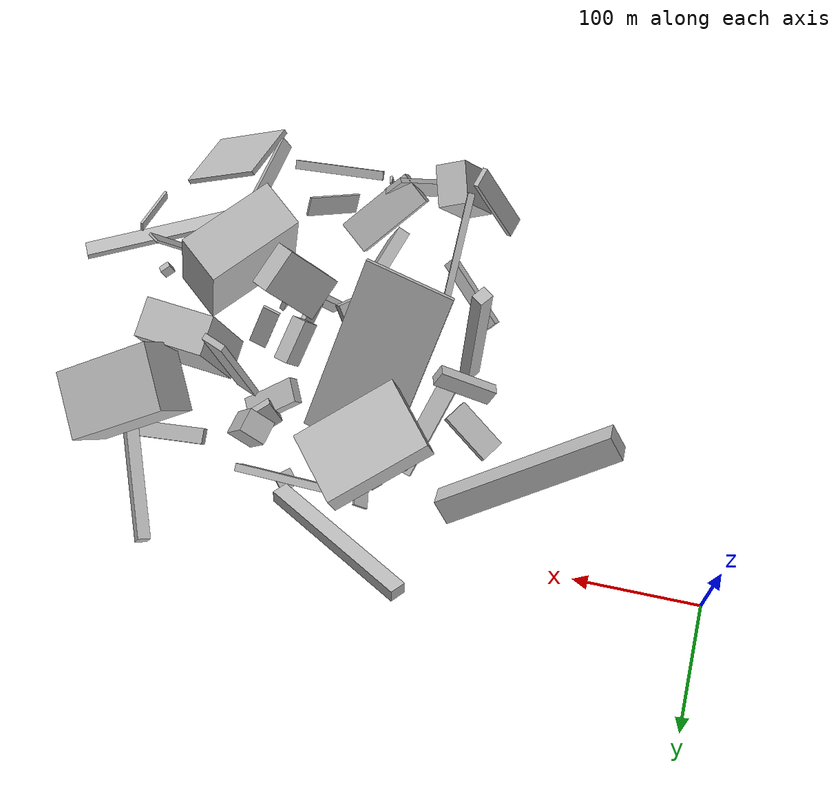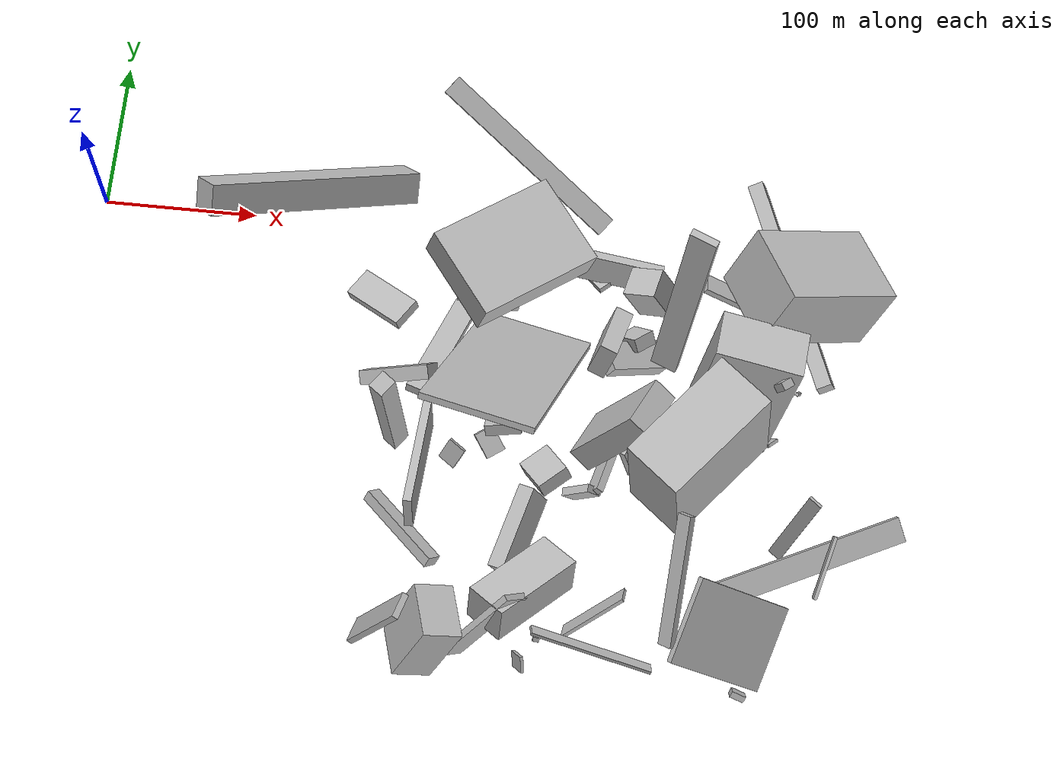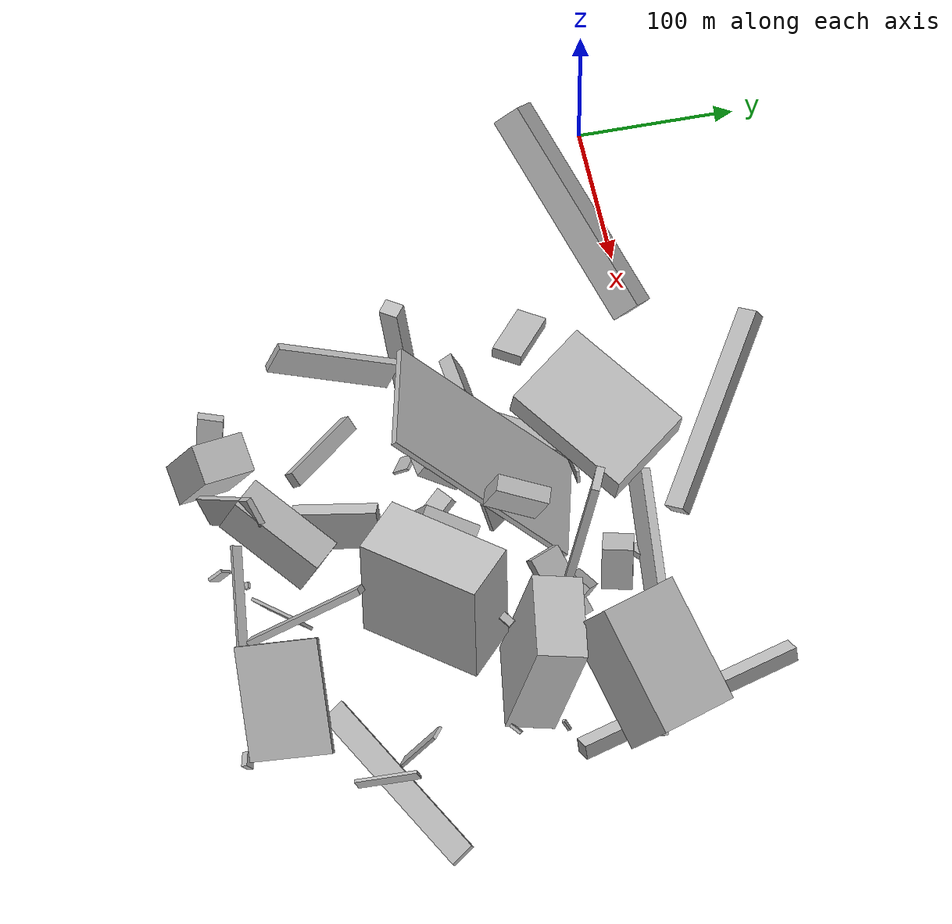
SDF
<sdf version="1.6">
 <world name="default">
  <model name="building_5">
   <static>0</static>
   <pose>398.93339716877426 -172.08604717186736 64.09622754239716 0.053077538592421564 -0.05921299457504138 -0.7085122933176582</pose>
   <link name="link">
    <gravity>0</gravity>
    <pose>0 0 39.0 0 0 0</pose>
    <collision name="collision"><geometry><box><size>39 78 78</size></box></geometry></collision>
    <visual name="visual">
     <cast_shadows>0</cast_shadows>
     <geometry><box><size>39 78 78</size></box></geometry>
     <material>
      <script>
       <uri>model://HANNAS_wall/materials/scripts</uri>
       <uri>model://HANNAS_wall/materials/textures</uri>
       <name>vrc/HANNAS_wall</name>
      </script>
     </material>
    </visual>
   </link>
  </model>
  <model name="building_6">
   <static>0</static>
   <pose>277.89133051898716 -120.46184297197075 64.45076537489118 0.05452620261090895 -0.7977927970173792 -1.8483691170286245</pose>
   <link name="link">
    <gravity>0</gravity>
    <pose>0 0 2.0 0 0 0</pose>
    <collision name="collision"><geometry><box><size>150 72 4</size></box></geometry></collision>
    <visual name="visual">
     <cast_shadows>0</cast_shadows>
     <geometry><box><size>150 72 4</size></box></geometry>
     <material>
      <script>
       <uri>model://HANNAS_wall/materials/scripts</uri>
       <uri>model://HANNAS_wall/materials/textures</uri>
       <name>vrc/HANNAS_wall</name>
      </script>
     </material>
    </visual>
   </link>
  </model>
  <model name="building_7">
   <static>0</static>
   <pose>446.8017825215225 -29.01620865275066 74.84554168238606 1.1951144042633148 -1.0097940043347784 0.7846490316749425</pose>
   <link name="link">
    <gravity>0</gravity>
    <pose>0 0 26.5 0 0 0</pose>
    <collision name="collision"><geometry><box><size>44 81 53</size></box></geometry></collision>
    <visual name="visual">
     <cast_shadows>0</cast_shadows>
     <geometry><box><size>44 81 53</size></box></geometry>
     <material>
      <script>
       <uri>model://HANNAS_wall/materials/scripts</uri>
       <uri>model://HANNAS_wall/materials/textures</uri>
       <name>vrc/HANNAS_wall</name>
      </script>
     </material>
    </visual>
   </link>
  </model>
  <model name="building_16">
   <static>0</static>
   <pose>319.32174859154327 -229.17555205556266 34.30561464346373 1.198908890928895 -0.25580832159423883 -0.6663575494947207</pose>
   <link name="link">
    <gravity>0</gravity>
    <pose>0 0 31.5 0 0 0</pose>
    <collision name="collision"><geometry><box><size>27 24 63</size></box></geometry></collision>
    <visual name="visual">
     <cast_shadows>0</cast_shadows>
     <geometry><box><size>27 24 63</size></box></geometry>
     <material>
      <script>
       <uri>model://HANNAS_wall/materials/scripts</uri>
       <uri>model://HANNAS_wall/materials/textures</uri>
       <name>vrc/HANNAS_wall</name>
      </script>
     </material>
    </visual>
   </link>
  </model>
  <model name="building_17">
   <static>0</static>
   <pose>288.5825087367174 -22.87796729139152 29.732562379120036 1.999127257364877 -1.2344574712953267 1.0833425770302985</pose>
   <link name="link">
    <gravity>0</gravity>
    <pose>0 0 40.5 0 0 0</pose>
    <collision name="collision"><geometry><box><size>22 6 81</size></box></geometry></collision>
    <visual name="visual">
     <cast_shadows>0</cast_shadows>
     <geometry><box><size>22 6 81</size></box></geometry>
     <material>
      <script>
       <uri>model://HANNAS_wall/materials/scripts</uri>
       <uri>model://HANNAS_wall/materials/textures</uri>
       <name>vrc/HANNAS_wall</name>
      </script>
     </material>
    </visual>
   </link>
  </model>
  <model name="building_18">
   <static>0</static>
   <pose>333.53033341735426 -161.84075177534714 67.94300992617995 -0.4588695776004299 -0.31931231626989753 -1.9994311355210548</pose>
   <link name="link">
    <gravity>0</gravity>
    <pose>0 0 31.5 0 0 0</pose>
    <collision name="collision"><geometry><box><size>35 16 63</size></box></geometry></collision>
    <visual name="visual">
     <cast_shadows>0</cast_shadows>
     <geometry><box><size>35 16 63</size></box></geometry>
     <material>
      <script>
       <uri>model://HANNAS_wall/materials/scripts</uri>
       <uri>model://HANNAS_wall/materials/textures</uri>
       <name>vrc/HANNAS_wall</name>
      </script>
     </material>
    </visual>
   </link>
  </model>
  <model name="building_20">
   <static>0</static>
   <pose>361.27698849981493 -163.45771236694168 31.36450086683428 -0.0886284664640928 0.15902502163076193 2.70741251020081</pose>
   <link name="link">
    <gravity>0</gravity>
    <pose>0 0 20.5 0 0 0</pose>
    <collision name="collision"><geometry><box><size>4 11 41</size></box></geometry></collision>
    <visual name="visual">
     <cast_shadows>0</cast_shadows>
     <geometry><box><size>4 11 41</size></box></geometry>
     <material>
      <script>
       <uri>model://HANNAS_wall/materials/scripts</uri>
       <uri>model://HANNAS_wall/materials/textures</uri>
       <name>vrc/HANNAS_wall</name>
      </script>
     </material>
    </visual>
   </link>
  </model>
  <model name="building_24">
   <static>0</static>
   <pose>330.13753266415074 -8.532858728943339 47.47595338647352 0.7351437066381752 -1.0852591759691783 -1.3733707639014436</pose>
   <link name="link">
    <gravity>0</gravity>
    <pose>0 0 66.5 0 0 0</pose>
    <collision name="collision"><geometry><box><size>10 13 133</size></box></geometry></collision>
    <visual name="visual">
     <cast_shadows>0</cast_shadows>
     <geometry><box><size>10 13 133</size></box></geometry>
     <material>
      <script>
       <uri>model://HANNAS_wall/materials/scripts</uri>
       <uri>model://HANNAS_wall/materials/textures</uri>
       <name>vrc/HANNAS_wall</name>
      </script>
     </material>
    </visual>
   </link>
  </model>
  <model name="building_29">
   <static>0</static>
   <pose>211.07696831288553 -125.23237079386973 45.82930065977993 0.7993206545895004 -0.9253238774563639 -2.25636208376925</pose>
   <link name="link">
    <gravity>0</gravity>
    <pose>0 0 4.5 0 0 0</pose>
    <collision name="collision"><geometry><box><size>14 48 9</size></box></geometry></collision>
    <visual name="visual">
     <cast_shadows>0</cast_shadows>
     <geometry><box><size>14 48 9</size></box></geometry>
     <material>
      <script>
       <uri>model://HANNAS_wall/materials/scripts</uri>
       <uri>model://HANNAS_wall/materials/textures</uri>
       <name>vrc/HANNAS_wall</name>
      </script>
     </material>
    </visual>
   </link>
  </model>
  <model name="building_31">
   <static>0</static>
   <pose>425.29663847870665 -95.95535504548681 54.94689572275863 0.5415639457791298 -1.341833681144645 0.8989096563595798</pose>
   <link name="link">
    <gravity>0</gravity>
    <pose>0 0 15.5 0 0 0</pose>
    <collision name="collision"><geometry><box><size>94 54 31</size></box></geometry></collision>
    <visual name="visual">
     <cast_shadows>0</cast_shadows>
     <geometry><box><size>94 54 31</size></box></geometry>
     <material>
      <script>
       <uri>model://HANNAS_wall/materials/scripts</uri>
       <uri>model://HANNAS_wall/materials/textures</uri>
       <name>vrc/HANNAS_wall</name>
      </script>
     </material>
    </visual>
   </link>
  </model>
  <model name="building_44">
   <static>0</static>
   <pose>213.25054710672995 -91.18977194952929 71.39043652763665 -1.8307228632661856 -0.017757153232347573 0.9810431939619569</pose>
   <link name="link">
    <gravity>0</gravity>
    <pose>0 0 21.0 0 0 0</pose>
    <collision name="collision"><geometry><box><size>19 7 42</size></box></geometry></collision>
    <visual name="visual">
     <cast_shadows>0</cast_shadows>
     <geometry><box><size>19 7 42</size></box></geometry>
     <material>
      <script>
       <uri>model://HANNAS_wall/materials/scripts</uri>
       <uri>model://HANNAS_wall/materials/textures</uri>
       <name>vrc/HANNAS_wall</name>
      </script>
     </material>
    </visual>
   </link>
  </model>
  <model name="building_45">
   <static>0</static>
   <pose>342.5688803798966 -94.63408500859082 96.39320158031114 1.2133950294862976 0.17933079309381014 -0.3144139770064585</pose>
   <link name="link">
    <gravity>0</gravity>
    <pose>0 0 17.0 0 0 0</pose>
    <collision name="collision"><geometry><box><size>11 25 34</size></box></geometry></collision>
    <visual name="visual">
     <cast_shadows>0</cast_shadows>
     <geometry><box><size>11 25 34</size></box></geometry>
     <material>
      <script>
       <uri>model://HANNAS_wall/materials/scripts</uri>
       <uri>model://HANNAS_wall/materials/textures</uri>
       <name>vrc/HANNAS_wall</name>
      </script>
     </material>
    </visual>
   </link>
  </model>
  <model name="building_47">
   <static>0</static>
   <pose>242.08736020114588 -231.47388122181928 18.5705238201404 1.8186696989000284 0.7934641205331967 -2.1810963785697024</pose>
   <link name="link">
    <gravity>0</gravity>
    <pose>0 0 31.0 0 0 0</pose>
    <collision name="collision"><geometry><box><size>7 10 62</size></box></geometry></collision>
    <visual name="visual">
     <cast_shadows>0</cast_shadows>
     <geometry><box><size>7 10 62</size></box></geometry>
     <material>
      <script>
       <uri>model://HANNAS_wall/materials/scripts</uri>
       <uri>model://HANNAS_wall/materials/textures</uri>
       <name>vrc/HANNAS_wall</name>
      </script>
     </material>
    </visual>
   </link>
  </model>
  <model name="building_51">
   <static>0</static>
   <pose>212.75103212722263 -149.86429438285782 69.26694926241689 1.6644634336752917 0.0564111201374724 -0.6366898147852937</pose>
   <link name="link">
    <gravity>0</gravity>
    <pose>0 0 6.0 0 0 0</pose>
    <collision name="collision"><geometry><box><size>10 131 12</size></box></geometry></collision>
    <visual name="visual">
     <cast_shadows>0</cast_shadows>
     <geometry><box><size>10 131 12</size></box></geometry>
     <material>
      <script>
       <uri>model://HANNAS_wall/materials/scripts</uri>
       <uri>model://HANNAS_wall/materials/textures</uri>
       <name>vrc/HANNAS_wall</name>
      </script>
     </material>
    </visual>
   </link>
  </model>
  <model name="building_53">
   <static>0</static>
   <pose>206.85785103577174 -11.070453846829343 90.36278645243243 -0.9409472923766149 0.6418157774248305 2.413458784015558</pose>
   <link name="link">
    <gravity>0</gravity>
    <pose>0 0 71.0 0 0 0</pose>
    <collision name="collision"><geometry><box><size>20 19 142</size></box></geometry></collision>
    <visual name="visual">
     <cast_shadows>0</cast_shadows>
     <geometry><box><size>20 19 142</size></box></geometry>
     <material>
      <script>
       <uri>model://HANNAS_wall/materials/scripts</uri>
       <uri>model://HANNAS_wall/materials/textures</uri>
       <name>vrc/HANNAS_wall</name>
      </script>
     </material>
    </visual>
   </link>
  </model>
  <model name="building_63">
   <static>0</static>
   <pose>453.73490536792485 -27.263702049841044 19.407430162297445 0.3422846071769745 -0.053739199249222505 -1.230569500940477</pose>
   <link name="link">
    <gravity>0</gravity>
    <pose>0 0 5.0 0 0 0</pose>
    <collision name="collision"><geometry><box><size>150 10 10</size></box></geometry></collision>
    <visual name="visual">
     <cast_shadows>0</cast_shadows>
     <geometry><box><size>150 10 10</size></box></geometry>
     <material>
      <script>
       <uri>model://HANNAS_wall/materials/scripts</uri>
       <uri>model://HANNAS_wall/materials/textures</uri>
       <name>vrc/HANNAS_wall</name>
      </script>
     </material>
    </visual>
   </link>
  </model>
  <model name="building_66">
   <static>0</static>
   <pose>424.6875087127726 -270.5419792257908 54.790916855699294 2.7184363878509337 -0.6679968742944132 3.1196332850886654</pose>
   <link name="link">
    <gravity>0</gravity>
    <pose>0 0 2.0 0 0 0</pose>
    <collision name="collision"><geometry><box><size>70 53 4</size></box></geometry></collision>
    <visual name="visual">
     <cast_shadows>0</cast_shadows>
     <geometry><box><size>70 53 4</size></box></geometry>
     <material>
      <script>
       <uri>model://HANNAS_wall/materials/scripts</uri>
       <uri>model://HANNAS_wall/materials/textures</uri>
       <name>vrc/HANNAS_wall</name>
      </script>
     </material>
    </visual>
   </link>
  </model>
  <model name="building_69">
   <static>0</static>
   <pose>381.769206946022 -78.69978151049636 102.30986122253354 1.4184671310479926 0.021604764668450144 -0.39764089660711266</pose>
   <link name="link">
    <gravity>0</gravity>
    <pose>0 0 2.5 0 0 0</pose>
    <collision name="collision"><geometry><box><size>17 150 5</size></box></geometry></collision>
    <visual name="visual">
     <cast_shadows>0</cast_shadows>
     <geometry><box><size>17 150 5</size></box></geometry>
     <material>
      <script>
       <uri>model://HANNAS_wall/materials/scripts</uri>
       <uri>model://HANNAS_wall/materials/textures</uri>
       <name>vrc/HANNAS_wall</name>
      </script>
     </material>
    </visual>
   </link>
  </model>
  <model name="building_71">
   <static>0</static>
   <pose>430.3617902914512 -43.596646243928795 26.59536363244081 2.582709025484036 -0.23120286905880444 -1.5397441066318263</pose>
   <link name="link">
    <gravity>0</gravity>
    <pose>0 0 2.0 0 0 0</pose>
    <collision name="collision"><geometry><box><size>12 77 4</size></box></geometry></collision>
    <visual name="visual">
     <cast_shadows>0</cast_shadows>
     <geometry><box><size>12 77 4</size></box></geometry>
     <material>
      <script>
       <uri>model://HANNAS_wall/materials/scripts</uri>
       <uri>model://HANNAS_wall/materials/textures</uri>
       <name>vrc/HANNAS_wall</name>
      </script>
     </material>
    </visual>
   </link>
  </model>
  <model name="building_74">
   <static>0</static>
   <pose>216.35362475955546 -278.1484164247691 43.41698530253619 -0.230526473746525 -1.1800280516222121 -0.08691773900555856</pose>
   <link name="link">
    <gravity>0</gravity>
    <pose>0 0 2.0 0 0 0</pose>
    <collision name="collision"><geometry><box><size>83 16 4</size></box></geometry></collision>
    <visual name="visual">
     <cast_shadows>0</cast_shadows>
     <geometry><box><size>83 16 4</size></box></geometry>
     <material>
      <script>
       <uri>model://HANNAS_wall/materials/scripts</uri>
       <uri>model://HANNAS_wall/materials/textures</uri>
       <name>vrc/HANNAS_wall</name>
      </script>
     </material>
    </visual>
   </link>
  </model>
  <model name="building_81">
   <static>0</static>
   <pose>299.7773929217013 -158.85287289773865 18.843176851873803 1.057231121624545 -0.11148352754299828 0.6981386286514321</pose>
   <link name="link">
    <gravity>0</gravity>
    <pose>0 0 13.0 0 0 0</pose>
    <collision name="collision"><geometry><box><size>21 10 26</size></box></geometry></collision>
    <visual name="visual">
     <cast_shadows>0</cast_shadows>
     <geometry><box><size>21 10 26</size></box></geometry>
     <material>
      <script>
       <uri>model://HANNAS_wall/materials/scripts</uri>
       <uri>model://HANNAS_wall/materials/textures</uri>
       <name>vrc/HANNAS_wall</name>
      </script>
     </material>
    </visual>
   </link>
  </model>
  <model name="building_83">
   <static>0</static>
   <pose>345.881093374061 -156.26535773109475 16.348076535123614 -0.34908434225188595 -0.9855911341040177 0.04418123912363032</pose>
   <link name="link">
    <gravity>0</gravity>
    <pose>0 0 2.5 0 0 0</pose>
    <collision name="collision"><geometry><box><size>11 48 5</size></box></geometry></collision>
    <visual name="visual">
     <cast_shadows>0</cast_shadows>
     <geometry><box><size>11 48 5</size></box></geometry>
     <material>
      <script>
       <uri>model://HANNAS_wall/materials/scripts</uri>
       <uri>model://HANNAS_wall/materials/textures</uri>
       <name>vrc/HANNAS_wall</name>
      </script>
     </material>
    </visual>
   </link>
  </model>
  <model name="building_85">
   <static>0</static>
   <pose>353.11728452761577 -50.1630886402509 45.99892068852472 -0.012615640891261243 -1.0906016608107083 2.910791837761511</pose>
   <link name="link">
    <gravity>0</gravity>
    <pose>0 0 11.0 0 0 0</pose>
    <collision name="collision"><geometry><box><size>27 19 22</size></box></geometry></collision>
    <visual name="visual">
     <cast_shadows>0</cast_shadows>
     <geometry><box><size>27 19 22</size></box></geometry>
     <material>
      <script>
       <uri>model://HANNAS_wall/materials/scripts</uri>
       <uri>model://HANNAS_wall/materials/textures</uri>
       <name>vrc/HANNAS_wall</name>
      </script>
     </material>
    </visual>
   </link>
  </model>
  <model name="building_87">
   <static>0</static>
   <pose>412.17310957400673 -238.2055836906215 15.408466206727429 -1.5731286308731738 0.4781739315002865 -1.1203410635710378</pose>
   <link name="link">
    <gravity>0</gravity>
    <pose>0 0 65.0 0 0 0</pose>
    <collision name="collision"><geometry><box><size>16 4 130</size></box></geometry></collision>
    <visual name="visual">
     <cast_shadows>0</cast_shadows>
     <geometry><box><size>16 4 130</size></box></geometry>
     <material>
      <script>
       <uri>model://HANNAS_wall/materials/scripts</uri>
       <uri>model://HANNAS_wall/materials/textures</uri>
       <name>vrc/HANNAS_wall</name>
      </script>
     </material>
    </visual>
   </link>
  </model>
  <model name="building_94">
   <static>0</static>
   <pose>237.82640401969547 -266.19479400108986 42.60944343810602 1.1647986920691578 -1.0838434576112543 0.6367862863590698</pose>
   <link name="link">
    <gravity>0</gravity>
    <pose>0 0 17.0 0 0 0</pose>
    <collision name="collision"><geometry><box><size>50 25 34</size></box></geometry></collision>
    <visual name="visual">
     <cast_shadows>0</cast_shadows>
     <geometry><box><size>50 25 34</size></box></geometry>
     <material>
      <script>
       <uri>model://HANNAS_wall/materials/scripts</uri>
       <uri>model://HANNAS_wall/materials/textures</uri>
       <name>vrc/HANNAS_wall</name>
      </script>
     </material>
    </visual>
   </link>
  </model>
  <model name="building_96">
   <static>0</static>
   <pose>291.9765140608899 -71.24919657547458 78.28093412419483 1.0942737926459882 1.3171638614572745 -2.945131957256762</pose>
   <link name="link">
    <gravity>0</gravity>
    <pose>0 0 30.0 0 0 0</pose>
    <collision name="collision"><geometry><box><size>22 85 60</size></box></geometry></collision>
    <visual name="visual">
     <cast_shadows>0</cast_shadows>
     <geometry><box><size>22 85 60</size></box></geometry>
     <material>
      <script>
       <uri>model://HANNAS_wall/materials/scripts</uri>
       <uri>model://HANNAS_wall/materials/textures</uri>
       <name>vrc/HANNAS_wall</name>
      </script>
     </material>
    </visual>
   </link>
  </model>
  <model name="building_103">
   <static>0</static>
   <pose>278.8808550957918 -277.7385865037873 48.05843631174262 1.6282387439402446 -0.8151918862577574 -2.6157453657638943</pose>
   <link name="link">
    <gravity>0</gravity>
    <pose>0 0 2.0 0 0 0</pose>
    <collision name="collision"><geometry><box><size>19 62 4</size></box></geometry></collision>
    <visual name="visual">
     <cast_shadows>0</cast_shadows>
     <geometry><box><size>19 62 4</size></box></geometry>
     <material>
      <script>
       <uri>model://HANNAS_wall/materials/scripts</uri>
       <uri>model://HANNAS_wall/materials/textures</uri>
       <name>vrc/HANNAS_wall</name>
      </script>
     </material>
    </visual>
   </link>
  </model>
  <model name="building_117">
   <static>0</static>
   <pose>390.2570481284121 -248.86937134308366 85.6803238083117 -0.7602898269202253 -0.5635606593788473 1.5063008667648352</pose>
   <link name="link">
    <gravity>0</gravity>
    <pose>0 0 2.0 0 0 0</pose>
    <collision name="collision"><geometry><box><size>80 10 4</size></box></geometry></collision>
    <visual name="visual">
     <cast_shadows>0</cast_shadows>
     <geometry><box><size>80 10 4</size></box></geometry>
     <material>
      <script>
       <uri>model://HANNAS_wall/materials/scripts</uri>
       <uri>model://HANNAS_wall/materials/textures</uri>
       <name>vrc/HANNAS_wall</name>
      </script>
     </material>
    </visual>
   </link>
  </model>
  <model name="building_118">
   <static>0</static>
   <pose>233.30263273342814 -91.688425072378 18.720220214311812 0.3270587146274248 -0.003866870962802843 2.8208815242364316</pose>
   <link name="link">
    <gravity>0</gravity>
    <pose>0 0 3.0 0 0 0</pose>
    <collision name="collision"><geometry><box><size>15 80 6</size></box></geometry></collision>
    <visual name="visual">
     <cast_shadows>0</cast_shadows>
     <geometry><box><size>15 80 6</size></box></geometry>
     <material>
      <script>
       <uri>model://HANNAS_wall/materials/scripts</uri>
       <uri>model://HANNAS_wall/materials/textures</uri>
       <name>vrc/HANNAS_wall</name>
      </script>
     </material>
    </visual>
   </link>
  </model>
  <model name="building_127">
   <static>0</static>
   <pose>308.10255857893844 -272.3179676955249 13.003840421148984 1.819336560177917 0.7632285714518219 1.7041477846618323</pose>
   <link name="link">
    <gravity>0</gravity>
    <pose>0 0 2.0 0 0 0</pose>
    <collision name="collision"><geometry><box><size>2 3 4</size></box></geometry></collision>
    <visual name="visual">
     <cast_shadows>0</cast_shadows>
     <geometry><box><size>2 3 4</size></box></geometry>
     <material>
      <script>
       <uri>model://HANNAS_wall/materials/scripts</uri>
       <uri>model://HANNAS_wall/materials/textures</uri>
       <name>vrc/HANNAS_wall</name>
      </script>
     </material>
    </visual>
   </link>
  </model>
  <model name="building_130">
   <static>0</static>
   <pose>292.52127794680825 -39.69268065906196 28.76807319618768 1.0995985578395517 0.5140523598104639 -1.8290010620625874</pose>
   <link name="link">
    <gravity>0</gravity>
    <pose>0 0 19.5 0 0 0</pose>
    <collision name="collision"><geometry><box><size>2 4 39</size></box></geometry></collision>
    <visual name="visual">
     <cast_shadows>0</cast_shadows>
     <geometry><box><size>2 4 39</size></box></geometry>
     <material>
      <script>
       <uri>model://HANNAS_wall/materials/scripts</uri>
       <uri>model://HANNAS_wall/materials/textures</uri>
       <name>vrc/HANNAS_wall</name>
      </script>
     </material>
    </visual>
   </link>
  </model>
  <model name="building_131">
   <static>0</static>
   <pose>288.6210239560692 -211.30409306012652 34.338914963476455 1.2854848257094322 -0.1574426486896658 1.2885439471627314</pose>
   <link name="link">
    <gravity>0</gravity>
    <pose>0 0 5.0 0 0 0</pose>
    <collision name="collision"><geometry><box><size>53 27 10</size></box></geometry></collision>
    <visual name="visual">
     <cast_shadows>0</cast_shadows>
     <geometry><box><size>53 27 10</size></box></geometry>
     <material>
      <script>
       <uri>model://HANNAS_wall/materials/scripts</uri>
       <uri>model://HANNAS_wall/materials/textures</uri>
       <name>vrc/HANNAS_wall</name>
      </script>
     </material>
    </visual>
   </link>
  </model>
  <model name="building_132">
   <static>0</static>
   <pose>273.4701232428839 -36.072053887656125 10.97615095393935 -1.466966175084831 -0.6755909997459438 0.07695449817707331</pose>
   <link name="link">
    <gravity>0</gravity>
    <pose>0 0 8.5 0 0 0</pose>
    <collision name="collision"><geometry><box><size>13 2 17</size></box></geometry></collision>
    <visual name="visual">
     <cast_shadows>0</cast_shadows>
     <geometry><box><size>13 2 17</size></box></geometry>
     <material>
      <script>
       <uri>model://HANNAS_wall/materials/scripts</uri>
       <uri>model://HANNAS_wall/materials/textures</uri>
       <name>vrc/HANNAS_wall</name>
      </script>
     </material>
    </visual>
   </link>
  </model>
  <model name="building_137">
   <static>0</static>
   <pose>380.4335213487251 -287.06106635700826 22.404067141121956 -1.1063601714961258 0.5731786432905286 1.7124235110476391</pose>
   <link name="link">
    <gravity>0</gravity>
    <pose>0 0 40.0 0 0 0</pose>
    <collision name="collision"><geometry><box><size>7 2 80</size></box></geometry></collision>
    <visual name="visual">
     <cast_shadows>0</cast_shadows>
     <geometry><box><size>7 2 80</size></box></geometry>
     <material>
      <script>
       <uri>model://HANNAS_wall/materials/scripts</uri>
       <uri>model://HANNAS_wall/materials/textures</uri>
       <name>vrc/HANNAS_wall</name>
      </script>
     </material>
    </visual>
   </link>
  </model>
  <model name="building_139">
   <static>0</static>
   <pose>480.6636469605532 -219.17468076940463 40.24567533086979 2.7889607687832783 -0.11224451863660764 2.927083882861287</pose>
   <link name="link">
    <gravity>0</gravity>
    <pose>0 0 4.0 0 0 0</pose>
    <collision name="collision"><geometry><box><size>2 40 8</size></box></geometry></collision>
    <visual name="visual">
     <cast_shadows>0</cast_shadows>
     <geometry><box><size>2 40 8</size></box></geometry>
     <material>
      <script>
       <uri>model://HANNAS_wall/materials/scripts</uri>
       <uri>model://HANNAS_wall/materials/textures</uri>
       <name>vrc/HANNAS_wall</name>
      </script>
     </material>
    </visual>
   </link>
  </model>
  <model name="building_142">
   <static>0</static>
   <pose>358.46646447502377 -95.54487240708963 22.31272391759819 1.564124974547798 -0.6345693217902145 -2.7108315550219855</pose>
   <link name="link">
    <gravity>0</gravity>
    <pose>0 0 10.0 0 0 0</pose>
    <collision name="collision"><geometry><box><size>46 9 20</size></box></geometry></collision>
    <visual name="visual">
     <cast_shadows>0</cast_shadows>
     <geometry><box><size>46 9 20</size></box></geometry>
     <material>
      <script>
       <uri>model://HANNAS_wall/materials/scripts</uri>
       <uri>model://HANNAS_wall/materials/textures</uri>
       <name>vrc/HANNAS_wall</name>
      </script>
     </material>
    </visual>
   </link>
  </model>
  <model name="building_144">
   <static>0</static>
   <pose>266.29944410715314 -27.94495326874235 57.40758512810751 2.6852832066774606 1.420002178506908 0.3141649193076575</pose>
   <link name="link">
    <gravity>0</gravity>
    <pose>0 0 4.5 0 0 0</pose>
    <collision name="collision"><geometry><box><size>9 14 9</size></box></geometry></collision>
    <visual name="visual">
     <cast_shadows>0</cast_shadows>
     <geometry><box><size>9 14 9</size></box></geometry>
     <material>
      <script>
       <uri>model://HANNAS_wall/materials/scripts</uri>
       <uri>model://HANNAS_wall/materials/textures</uri>
       <name>vrc/HANNAS_wall</name>
      </script>
     </material>
    </visual>
   </link>
  </model>
  <model name="building_145">
   <static>0</static>
   <pose>373.76941916841065 -141.85198720691625 29.027770643890115 -2.670161785132117 -1.2107980116077968 -2.254730556325783</pose>
   <link name="link">
    <gravity>0</gravity>
    <pose>0 0 1.0 0 0 0</pose>
    <collision name="collision"><geometry><box><size>48 14 2</size></box></geometry></collision>
    <visual name="visual">
     <cast_shadows>0</cast_shadows>
     <geometry><box><size>48 14 2</size></box></geometry>
     <material>
      <script>
       <uri>model://HANNAS_wall/materials/scripts</uri>
       <uri>model://HANNAS_wall/materials/textures</uri>
       <name>vrc/HANNAS_wall</name>
      </script>
     </material>
    </visual>
   </link>
  </model>
  <model name="building_156">
   <static>0</static>
   <pose>325.7015556989244 -177.87631841210475 22.347667452457717 2.469586719311925 -0.08529168228660557 1.632691162363394</pose>
   <link name="link">
    <gravity>0</gravity>
    <pose>0 0 6.5 0 0 0</pose>
    <collision name="collision"><geometry><box><size>5 20 13</size></box></geometry></collision>
    <visual name="visual">
     <cast_shadows>0</cast_shadows>
     <geometry><box><size>5 20 13</size></box></geometry>
     <material>
      <script>
       <uri>model://HANNAS_wall/materials/scripts</uri>
       <uri>model://HANNAS_wall/materials/textures</uri>
       <name>vrc/HANNAS_wall</name>
      </script>
     </material>
    </visual>
   </link>
  </model>
  <model name="building_169">
   <static>0</static>
   <pose>336.94545241769356 -24.077655110963832 11.764728198026196 -1.65924892192208 -1.2832054439379368 2.369414041239096</pose>
   <link name="link">
    <gravity>0</gravity>
    <pose>0 0 7.0 0 0 0</pose>
    <collision name="collision"><geometry><box><size>4 14 14</size></box></geometry></collision>
    <visual name="visual">
     <cast_shadows>0</cast_shadows>
     <geometry><box><size>4 14 14</size></box></geometry>
     <material>
      <script>
       <uri>model://HANNAS_wall/materials/scripts</uri>
       <uri>model://HANNAS_wall/materials/textures</uri>
       <name>vrc/HANNAS_wall</name>
      </script>
     </material>
    </visual>
   </link>
  </model>
  <model name="building_173">
   <static>0</static>
   <pose>361.63125806185997 -69.40602838828715 21.646948208514118 1.1847137065262026 -0.7769734857087868 -0.5901064314553279</pose>
   <link name="link">
    <gravity>0</gravity>
    <pose>0 0 7.5 0 0 0</pose>
    <collision name="collision"><geometry><box><size>19 9 15</size></box></geometry></collision>
    <visual name="visual">
     <cast_shadows>0</cast_shadows>
     <geometry><box><size>19 9 15</size></box></geometry>
     <material>
      <script>
       <uri>model://HANNAS_wall/materials/scripts</uri>
       <uri>model://HANNAS_wall/materials/textures</uri>
       <name>vrc/HANNAS_wall</name>
      </script>
     </material>
    </visual>
   </link>
  </model>
  <model name="building_175">
   <static>0</static>
   <pose>460.9954814677268 -195.00511288318668 35.522424769334506 -3.0070711966140276 -1.1349634781546123 0.7912162486455988</pose>
   <link name="link">
    <gravity>0</gravity>
    <pose>0 0 1.0 0 0 0</pose>
    <collision name="collision"><geometry><box><size>60 9 2</size></box></geometry></collision>
    <visual name="visual">
     <cast_shadows>0</cast_shadows>
     <geometry><box><size>60 9 2</size></box></geometry>
     <material>
      <script>
       <uri>model://HANNAS_wall/materials/scripts</uri>
       <uri>model://HANNAS_wall/materials/textures</uri>
       <name>vrc/HANNAS_wall</name>
      </script>
     </material>
    </visual>
   </link>
  </model>
  <model name="building_176">
   <static>0</static>
   <pose>299.62315057750885 -283.74656356386913 16.847777027551427 2.7005724456227327 -0.8880951718152631 -0.863635517961145</pose>
   <link name="link">
    <gravity>0</gravity>
    <pose>0 0 5.0 0 0 0</pose>
    <collision name="collision"><geometry><box><size>14 2 10</size></box></geometry></collision>
    <visual name="visual">
     <cast_shadows>0</cast_shadows>
     <geometry><box><size>14 2 10</size></box></geometry>
     <material>
      <script>
       <uri>model://HANNAS_wall/materials/scripts</uri>
       <uri>model://HANNAS_wall/materials/textures</uri>
       <name>vrc/HANNAS_wall</name>
      </script>
     </material>
    </visual>
   </link>
  </model>
  <model name="building_180">
   <static>0</static>
   <pose>247.94278256157293 -161.29612038123634 23.63896486420563 0.10386748912269486 -0.8334770045743957 0.8781767978589577</pose>
   <link name="link">
    <gravity>0</gravity>
    <pose>0 0 1.0 0 0 0</pose>
    <collision name="collision"><geometry><box><size>15 12 2</size></box></geometry></collision>
    <visual name="visual">
     <cast_shadows>0</cast_shadows>
     <geometry><box><size>15 12 2</size></box></geometry>
     <material>
      <script>
       <uri>model://HANNAS_wall/materials/scripts</uri>
       <uri>model://HANNAS_wall/materials/textures</uri>
       <name>vrc/HANNAS_wall</name>
      </script>
     </material>
    </visual>
   </link>
  </model>
  <model name="building_183">
   <static>0</static>
   <pose>234.34820607429026 -207.29106926537355 110.53718189173539 0.4167802451260852 0.07429559360988605 3.134037962273862</pose>
   <link name="link">
    <gravity>0</gravity>
    <pose>0 0 10.5 0 0 0</pose>
    <collision name="collision"><geometry><box><size>5 80 21</size></box></geometry></collision>
    <visual name="visual">
     <cast_shadows>0</cast_shadows>
     <geometry><box><size>5 80 21</size></box></geometry>
     <material>
      <script>
       <uri>model://HANNAS_wall/materials/scripts</uri>
       <uri>model://HANNAS_wall/materials/textures</uri>
       <name>vrc/HANNAS_wall</name>
      </script>
     </material>
    </visual>
   </link>
  </model>
  <model name="building_187">
   <static>0</static>
   <pose>294.8759033045926 -113.59575414065961 27.0981195372311 -3.1315516292260086 1.2329124672020448 0.7179303163396396</pose>
   <link name="link">
    <gravity>0</gravity>
    <pose>0 0 1.5 0 0 0</pose>
    <collision name="collision"><geometry><box><size>22 16 3</size></box></geometry></collision>
    <visual name="visual">
     <cast_shadows>0</cast_shadows>
     <geometry><box><size>22 16 3</size></box></geometry>
     <material>
      <script>
       <uri>model://HANNAS_wall/materials/scripts</uri>
       <uri>model://HANNAS_wall/materials/textures</uri>
       <name>vrc/HANNAS_wall</name>
      </script>
     </material>
    </visual>
   </link>
  </model>
  <model name="building_189">
   <static>0</static>
   <pose>280.6544735354314 -136.76907943944047 52.252555990564304 -0.2996996850249619 -0.8511495975917795 1.8875574549094005</pose>
   <link name="link">
    <gravity>0</gravity>
    <pose>0 0 15.5 0 0 0</pose>
    <collision name="collision"><geometry><box><size>7 22 31</size></box></geometry></collision>
    <visual name="visual">
     <cast_shadows>0</cast_shadows>
     <geometry><box><size>7 22 31</size></box></geometry>
     <material>
      <script>
       <uri>model://HANNAS_wall/materials/scripts</uri>
       <uri>model://HANNAS_wall/materials/textures</uri>
       <name>vrc/HANNAS_wall</name>
      </script>
     </material>
    </visual>
   </link>
  </model>
  <model name="building_191">
   <static>0</static>
   <pose>430.0885294943911 -293.6609701406558 11.801436377389617 1.8633485773245224 -0.5587184393754742 1.1415833488594704</pose>
   <link name="link">
    <gravity>0</gravity>
    <pose>0 0 4.5 0 0 0</pose>
    <collision name="collision"><geometry><box><size>4 7 9</size></box></geometry></collision>
    <visual name="visual">
     <cast_shadows>0</cast_shadows>
     <geometry><box><size>4 7 9</size></box></geometry>
     <material>
      <script>
       <uri>model://HANNAS_wall/materials/scripts</uri>
       <uri>model://HANNAS_wall/materials/textures</uri>
       <name>vrc/HANNAS_wall</name>
      </script>
     </material>
    </visual>
   </link>
  </model>
  <model name="building_192">
   <static>0</static>
   <pose>344.05470244446934 -257.45142888421515 25.477410792008875 0.8043033542192518 -0.8401618099117745 -1.6964506243516644</pose>
   <link name="link">
    <gravity>0</gravity>
    <pose>0 0 1.0 0 0 0</pose>
    <collision name="collision"><geometry><box><size>16 46 2</size></box></geometry></collision>
    <visual name="visual">
     <cast_shadows>0</cast_shadows>
     <geometry><box><size>16 46 2</size></box></geometry>
     <material>
      <script>
       <uri>model://HANNAS_wall/materials/scripts</uri>
       <uri>model://HANNAS_wall/materials/textures</uri>
       <name>vrc/HANNAS_wall</name>
      </script>
     </material>
    </visual>
   </link>
  </model>
  <model name="building_212">
   <static>0</static>
   <pose>264.6569129009575 -139.00467821828667 8.490248843538375 -2.8716419571302683 -1.1311572841595166 -1.2303657100815406</pose>
   <link name="link">
    <gravity>0</gravity>
    <pose>0 0 8.5 0 0 0</pose>
    <collision name="collision"><geometry><box><size>6 13 17</size></box></geometry></collision>
    <visual name="visual">
     <cast_shadows>0</cast_shadows>
     <geometry><box><size>6 13 17</size></box></geometry>
     <material>
      <script>
       <uri>model://HANNAS_wall/materials/scripts</uri>
       <uri>model://HANNAS_wall/materials/textures</uri>
       <name>vrc/HANNAS_wall</name>
      </script>
     </material>
    </visual>
   </link>
  </model>
  <model name="building_213">
   <static>0</static>
   <pose>461.09111789967506 -102.4079902439168 27.001157457710693 0.5309755829402427 -0.05061648121485625 -0.5370169034490455</pose>
   <link name="link">
    <gravity>0</gravity>
    <pose>0 0 4.0 0 0 0</pose>
    <collision name="collision"><geometry><box><size>2 2 8</size></box></geometry></collision>
    <visual name="visual">
     <cast_shadows>0</cast_shadows>
     <geometry><box><size>2 2 8</size></box></geometry>
     <material>
      <script>
       <uri>model://HANNAS_wall/materials/scripts</uri>
       <uri>model://HANNAS_wall/materials/textures</uri>
       <name>vrc/HANNAS_wall</name>
      </script>
     </material>
    </visual>
   </link>
  </model>
  <model name="building_215">
   <static>0</static>
   <pose>259.0466693401035 -49.442498178672 27.66007490877529 0.7163832537542072 -0.875300319854348 -0.5518260398010051</pose>
   <link name="link">
    <gravity>0</gravity>
    <pose>0 0 11.0 0 0 0</pose>
    <collision name="collision"><geometry><box><size>2 17 22</size></box></geometry></collision>
    <visual name="visual">
     <cast_shadows>0</cast_shadows>
     <geometry><box><size>2 17 22</size></box></geometry>
     <material>
      <script>
       <uri>model://HANNAS_wall/materials/scripts</uri>
       <uri>model://HANNAS_wall/materials/textures</uri>
       <name>vrc/HANNAS_wall</name>
      </script>
     </material>
    </visual>
   </link>
  </model>
  <model name="building_217">
   <static>0</static>
   <pose>442.9024715406893 -134.8013694978004 14.727363534917455 -2.0335925873953196 -0.9110281609479066 -0.4298905958316821</pose>
   <link name="link">
    <gravity>0</gravity>
    <pose>0 0 4.0 0 0 0</pose>
    <collision name="collision"><geometry><box><size>6 2 8</size></box></geometry></collision>
    <visual name="visual">
     <cast_shadows>0</cast_shadows>
     <geometry><box><size>6 2 8</size></box></geometry>
     <material>
      <script>
       <uri>model://HANNAS_wall/materials/scripts</uri>
       <uri>model://HANNAS_wall/materials/textures</uri>
       <name>vrc/HANNAS_wall</name>
      </script>
     </material>
    </visual>
   </link>
  </model>
  <model name="building_218">
   <static>0</static>
   <pose>259.22109833057135 -62.18607768638341 29.18842775637017 1.6966687204259865 -0.09190434993734392 1.6928818404942292</pose>
   <link name="link">
    <gravity>0</gravity>
    <pose>0 0 10.5 0 0 0</pose>
    <collision name="collision"><geometry><box><size>2 15 21</size></box></geometry></collision>
    <visual name="visual">
     <cast_shadows>0</cast_shadows>
     <geometry><box><size>2 15 21</size></box></geometry>
     <material>
      <script>
       <uri>model://HANNAS_wall/materials/scripts</uri>
       <uri>model://HANNAS_wall/materials/textures</uri>
       <name>vrc/HANNAS_wall</name>
      </script>
     </material>
    </visual>
   </link>
  </model>
  <model name="building_219">
   <static>0</static>
   <pose>442.6229982305478 -139.11219609471073 125.22942409580861 -1.1556353077638397 0.31833708959170454 0.7275451767180171</pose>
   <link name="link">
    <gravity>0</gravity>
    <pose>0 0 2.5 0 0 0</pose>
    <collision name="collision"><geometry><box><size>8 8 5</size></box></geometry></collision>
    <visual name="visual">
     <cast_shadows>0</cast_shadows>
     <geometry><box><size>8 8 5</size></box></geometry>
     <material>
      <script>
       <uri>model://HANNAS_wall/materials/scripts</uri>
       <uri>model://HANNAS_wall/materials/textures</uri>
       <name>vrc/HANNAS_wall</name>
      </script>
     </material>
    </visual>
   </link>
  </model>
 </world>
</sdf>
